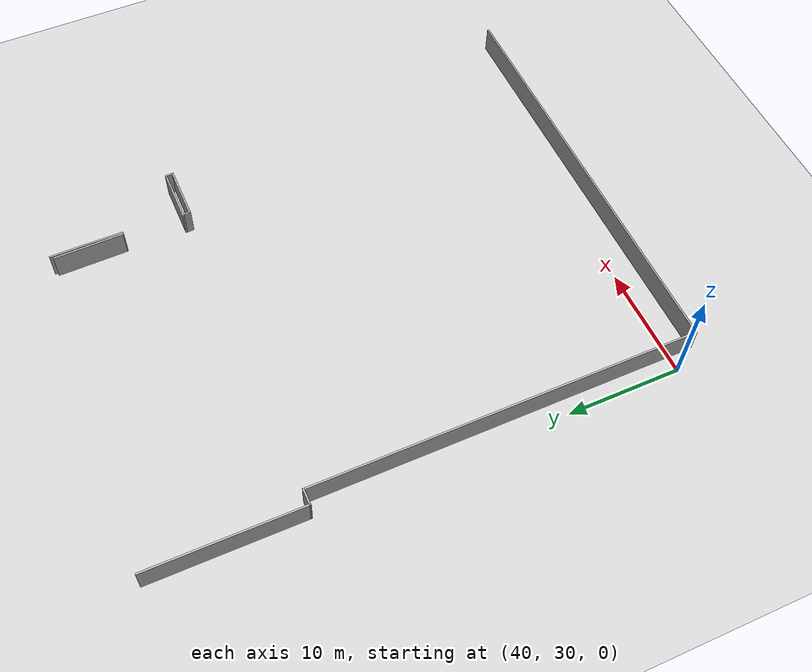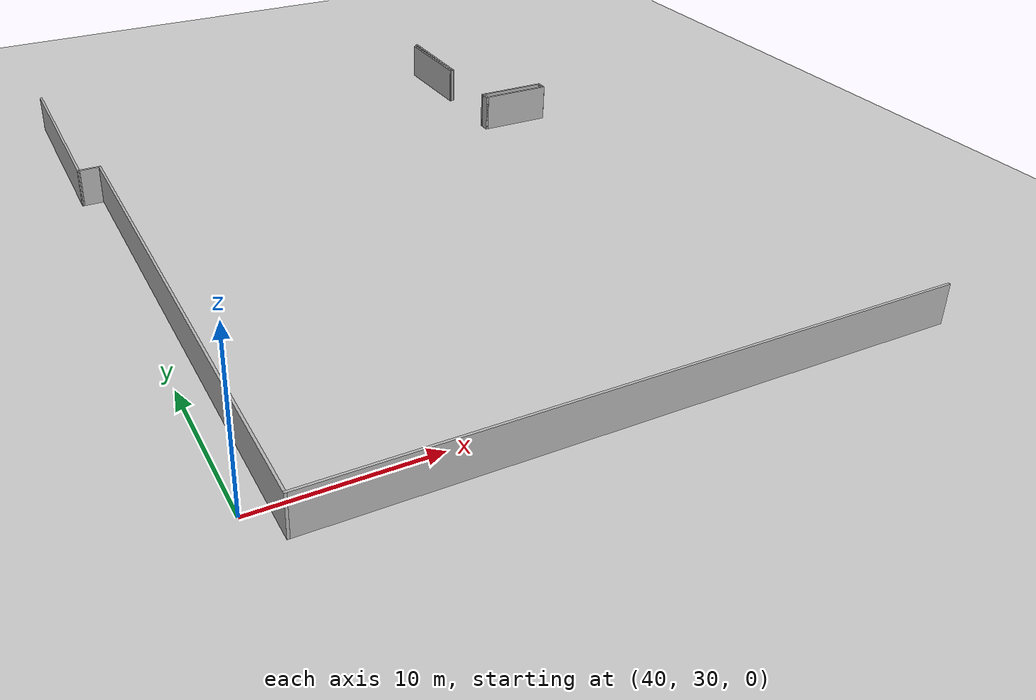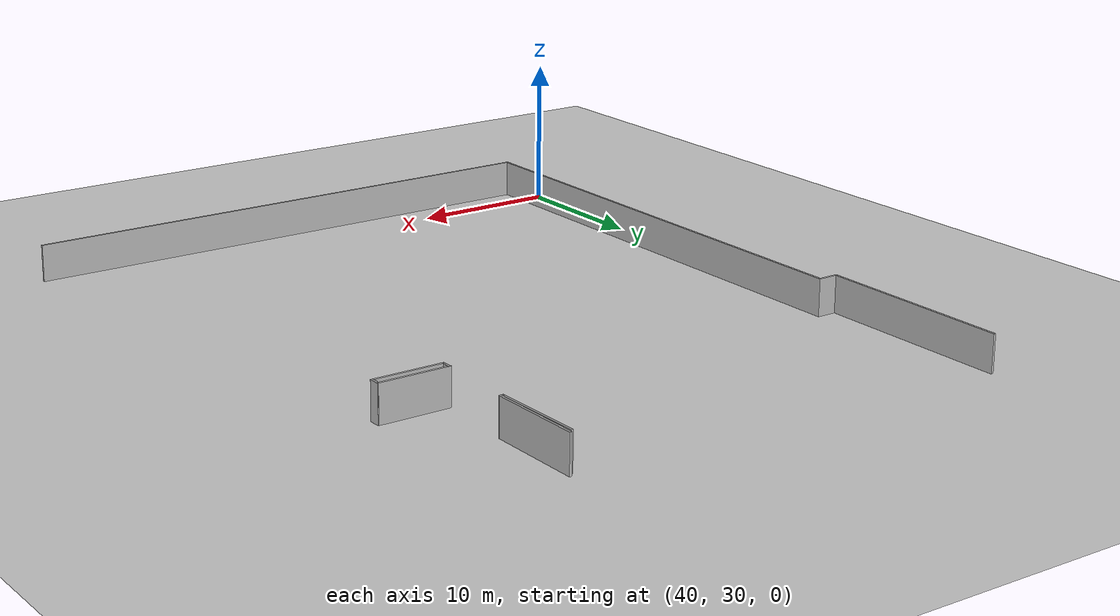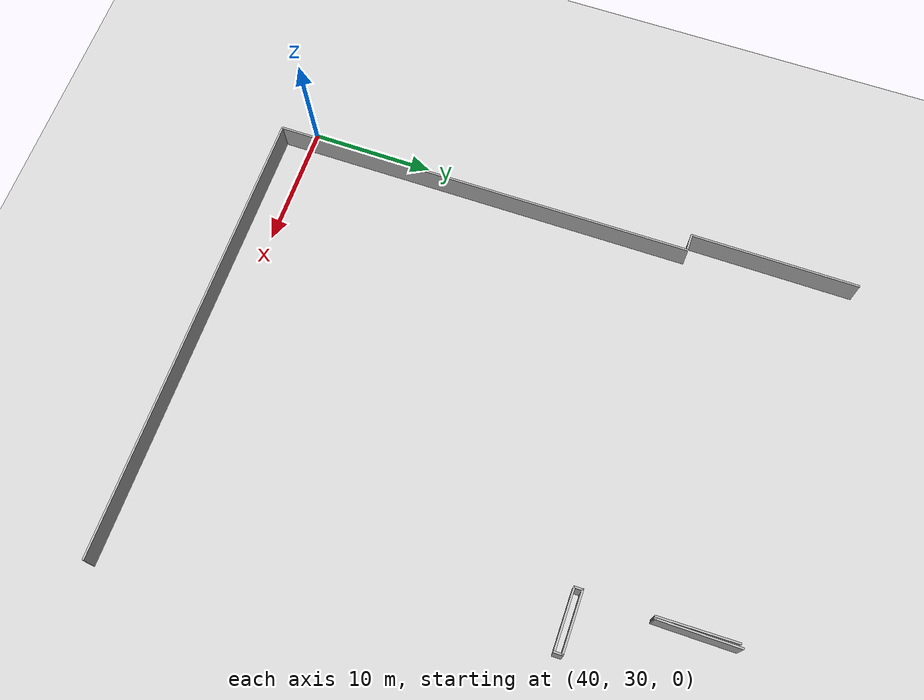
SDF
<sdf version="1.6">
 <world name="default">
  <model name="ground_plane">
   <static>1</static>
   <link name="link">
    <collision name="collision">
     <geometry><plane><normal>0 0 1</normal><size>200 100</size></plane></geometry>
     <surface><friction><ode><mu>100</mu><mu2>50</mu2></ode></friction></surface>
    </collision>
    <visual name="visual">
     <cast_shadows>0</cast_shadows>
     <geometry><plane><normal>0 0 1</normal><size>200 100</size></plane></geometry>
     <material>
      <script><uri>file://media/materials/scripts/gazebo.material</uri><name>Gazebo/Grey</name></script>
     </material>
    </visual>
   </link>
  </model>
  <model name="vgke_production">
   <link name="Wall_114">
    <pose>-58.4637 21.5223 0 0 0 -1.57534</pose>
    <visual name="Wall_114_Visual">
     <pose>0 0 1.25 0 -0 0</pose>
     <geometry><box><size>13.6048 0.15 2.5</size></box></geometry>
    </visual>
    <collision name="Wall_114_Collision">
     <pose>0 0 1.25 0 -0 0</pose>
     <geometry><box><size>13.6048 0.15 2.5</size></box></geometry>
    </collision>
    <inertial>
     <inertia><ixx>1</ixx><ixy>0</ixy><ixz>0</ixz><iyy>1</iyy><iyz>0</iyz><izz>1</izz></inertia>
     <mass>1</mass>
    </inertial>
   </link>
   <link name="Wall_116">
    <pose>-57.8193 14.795 0 0 -0 0</pose>
    <visual name="Wall_116_Visual">
     <pose>0 0 1.25 0 -0 0</pose>
     <geometry><box><size>1.5 0.15 2.5</size></box></geometry>
    </visual>
    <collision name="Wall_116_Collision">
     <pose>0 0 1.25 0 -0 0</pose>
     <geometry><box><size>1.5 0.15 2.5</size></box></geometry>
    </collision>
    <inertial>
     <inertia><ixx>1</ixx><ixy>0</ixy><ixz>0</ixz><iyy>1</iyy><iyz>0</iyz><izz>1</izz></inertia>
     <mass>1</mass>
    </inertial>
   </link>
   <link name="Wall_119">
    <pose>-57.1443 -2.38003 0 0 0 -1.5708</pose>
    <visual name="Wall_119_Visual">
     <pose>0 0 1.25 0 -0 0</pose>
     <geometry><box><size>34.5 0.15 2.5</size></box></geometry>
    </visual>
    <collision name="Wall_119_Collision">
     <pose>0 0 1.25 0 -0 0</pose>
     <geometry><box><size>34.5 0.15 2.5</size></box></geometry>
    </collision>
    <inertial>
     <inertia><ixx>1</ixx><ixy>0</ixy><ixz>0</ixz><iyy>1</iyy><iyz>0</iyz><izz>1</izz></inertia>
     <mass>1</mass>
    </inertial>
   </link>
   <link name="Wall_122">
    <pose>-38.4693 -19.555 0 0 -0 0</pose>
    <visual name="Wall_122_Visual">
     <pose>0 0 1.25 0 -0 0</pose>
     <geometry><box><size>37.5 0.15 2.5</size></box></geometry>
    </visual>
    <collision name="Wall_122_Collision">
     <pose>0 0 1.25 0 -0 0</pose>
     <geometry><box><size>37.5 0.15 2.5</size></box></geometry>
    </collision>
    <inertial>
     <inertia><ixx>1</ixx><ixy>0</ixy><ixz>0</ixz><iyy>1</iyy><iyz>0</iyz><izz>1</izz></inertia>
     <mass>1</mass>
    </inertial>
   </link>
   <link name="Wall_646">
    <pose>-24.4867 14.4923 0 0 -0 1.5708</pose>
    <visual name="Wall_646_Visual">
     <pose>0 0 1.25 0 -0 0</pose>
     <geometry><box><size>0.75 0.15 2.5</size></box></geometry>
    </visual>
    <collision name="Wall_646_Collision">
     <pose>0 0 1.25 0 -0 0</pose>
     <geometry><box><size>0.75 0.15 2.5</size></box></geometry>
    </collision>
    <inertial>
     <inertia><ixx>1</ixx><ixy>0</ixy><ixz>0</ixz><iyy>1</iyy><iyz>0</iyz><izz>1</izz></inertia>
     <mass>1</mass>
    </inertial>
   </link>
   <link name="Wall_648">
    <pose>-29.1971 14.4923 0 0 0 -1.5708</pose>
    <visual name="Wall_648_Visual">
     <pose>0 0 1.25 0 -0 0</pose>
     <geometry><box><size>0.75 0.15 2.5</size></box></geometry>
    </visual>
    <collision name="Wall_648_Collision">
     <pose>0 0 1.25 0 -0 0</pose>
     <geometry><box><size>0.75 0.15 2.5</size></box></geometry>
    </collision>
    <inertial>
     <inertia><ixx>1</ixx><ixy>0</ixy><ixz>0</ixz><iyy>1</iyy><iyz>0</iyz><izz>1</izz></inertia>
     <mass>1</mass>
    </inertial>
   </link>
   <link name="Wall_649">
    <pose>-26.835 14.1923 0 0 -0 0</pose>
    <visual name="Wall_649_Visual">
     <pose>0 0 1.25 0 -0 0</pose>
     <geometry><box><size>4.82443 0.15 2.5</size></box></geometry>
    </visual>
    <collision name="Wall_649_Collision">
     <pose>0 0 1.25 0 -0 0</pose>
     <geometry><box><size>4.82443 0.15 2.5</size></box></geometry>
    </collision>
    <inertial>
     <inertia><ixx>1</ixx><ixy>0</ixy><ixz>0</ixz><iyy>1</iyy><iyz>0</iyz><izz>1</izz></inertia>
     <mass>1</mass>
    </inertial>
   </link>
   <link name="Wall_649_clone">
    <pose>-26.8755 14.8117 0 0 -0 0</pose>
    <visual name="Wall_649_Visual">
     <pose>0 0 1.25 0 -0 0</pose>
     <geometry><box><size>4.82443 0.15 2.5</size></box></geometry>
     <material><shader type="pixel"/></material>
    </visual>
    <collision name="Wall_649_Collision">
     <pose>0 0 1.25 0 -0 0</pose>
     <geometry><box><size>4.82443 0.15 2.5</size></box></geometry>
    </collision>
    <inertial>
     <inertia><ixx>1</ixx><ixy>0</ixy><ixz>0</ixz><iyy>1</iyy><iyz>0</iyz><izz>1</izz></inertia>
     <mass>1</mass>
    </inertial>
   </link>
   <link name="Wall_89">
    <pose>-28.9228 23.3797 0 0 0 -1.5708</pose>
    <visual name="Wall_89_Visual">
     <pose>0 0 1.25 0 -0 0</pose>
     <geometry><box><size>6.5 0.15 2.5</size></box></geometry>
    </visual>
    <collision name="Wall_89_Collision">
     <pose>0 0 1.25 0 -0 0</pose>
     <geometry><box><size>6.5 0.15 2.5</size></box></geometry>
    </collision>
    <inertial>
     <inertia><ixx>1</ixx><ixy>0</ixy><ixz>0</ixz><iyy>1</iyy><iyz>0</iyz><izz>1</izz></inertia>
     <mass>1</mass>
    </inertial>
   </link>
   <link name="Wall_91">
    <pose>-29.0023 20.2045 0 0 0 -3.13916</pose>
    <visual name="Wall_91_Visual">
     <pose>0 0 1.25 0 -0 0</pose>
     <geometry><box><size>0.309088 0.15 2.5</size></box></geometry>
    </visual>
    <collision name="Wall_91_Collision">
     <pose>0 0 1.25 0 -0 0</pose>
     <geometry><box><size>0.309088 0.15 2.5</size></box></geometry>
    </collision>
    <inertial>
     <inertia><ixx>1</ixx><ixy>0</ixy><ixz>0</ixz><iyy>1</iyy><iyz>0</iyz><izz>1</izz></inertia>
     <mass>1</mass>
    </inertial>
   </link>
   <link name="Wall_95">
    <pose>-29.1335 23.2522 0 0 -0 1.58774</pose>
    <visual name="Wall_95_Visual">
     <pose>0 0 1.25 0 -0 0</pose>
     <geometry><box><size>6.24657 0.15 2.5</size></box></geometry>
    </visual>
    <collision name="Wall_95_Collision">
     <pose>0 0 1.25 0 -0 0</pose>
     <geometry><box><size>6.24657 0.15 2.5</size></box></geometry>
    </collision>
    <inertial>
     <inertia><ixx>1</ixx><ixy>0</ixy><ixz>0</ixz><iyy>1</iyy><iyz>0</iyz><izz>1</izz></inertia>
     <mass>1</mass>
    </inertial>
   </link>
   <pose>98.6 47.426 0.01 0 0 0</pose>
  </model>
 </world>
</sdf>
